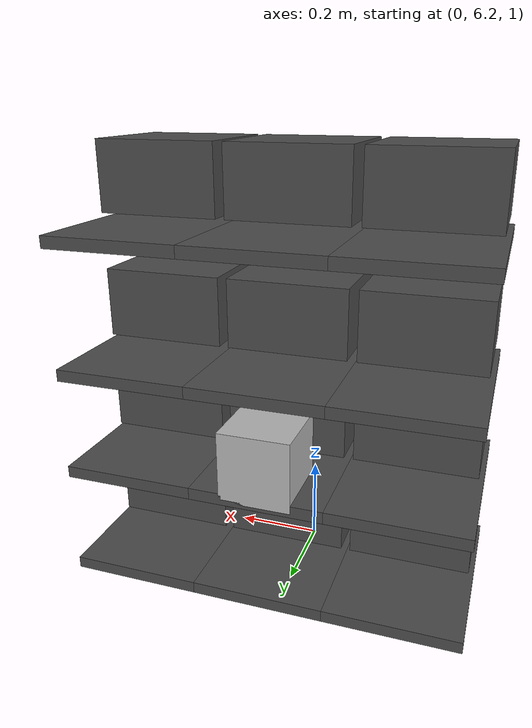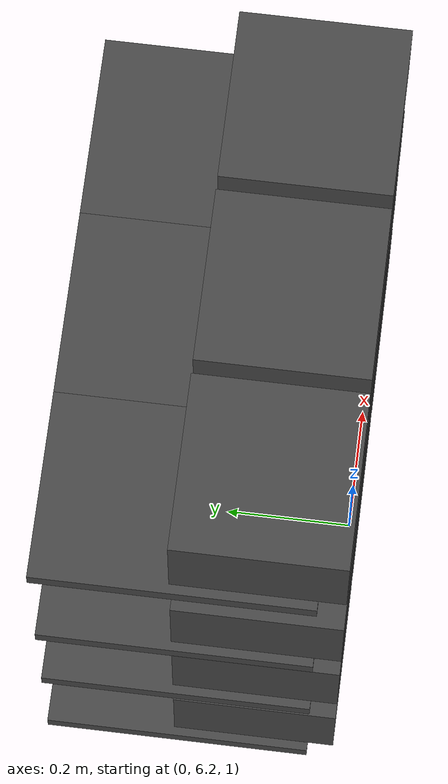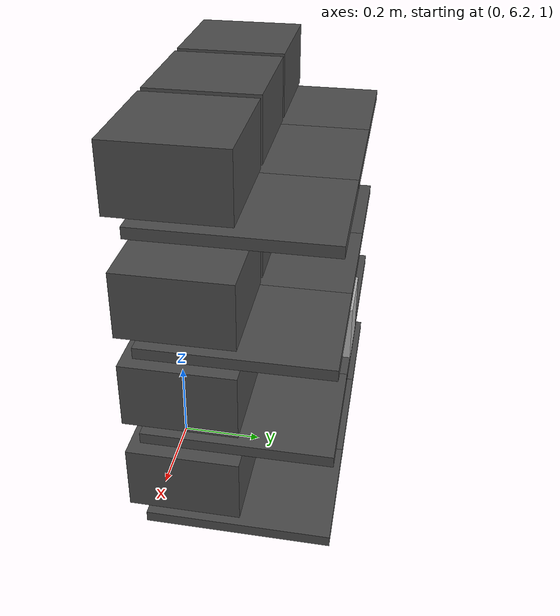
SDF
<sdf version="1.6">
 <world name="default">
  <plugin name="ros_link_attacher_plugin" filename="libgazebo_ros_link_attacher.so"/>
  <gravity>0 0 -9.8</gravity>
  <physics default="0" name="default_physics" type="ode">
   <max_step_size>0.001</max_step_size>
   <real_time_factor>1</real_time_factor>
   <real_time_update_rate>1000</real_time_update_rate>
  </physics>
  <scene><shadows>0</shadows><grid>false</grid><origin_visual>false</origin_visual></scene>
  <light name="Warehouse_CeilingLight_003" type="point">
   <pose>0 3.5 9 0 0 0</pose>
   <diffuse>0.5 0.5 0.5 1</diffuse>
   <specular>0.2 0.2 0.2 1</specular>
   <attenuation>
    <range>80</range>
    <constant>0.3</constant>
    <linear>0.01</linear>
    <quadratic>0.001</quadratic>
   </attenuation>
   <direction>0.1 0.1 -1</direction>
  </light>
  <model name="amazon_kiva_pod_pads">
   <include><name>pad_bottom_00</name><uri>model://pad_bottom</uri><pose>0.28 6.43 1.83 0 0 0</pose></include>
   <include><name>pad_bottom_01</name><uri>model://pad_bottom</uri><pose>0 6.43 1.83 0 0 0</pose></include>
   <include><name>pad_bottom_02</name><uri>model://pad_bottom</uri><pose>-0.28 6.43 1.83 0 0 0</pose></include>
   <include><name>pad_bottom_10</name><uri>model://pad_bottom</uri><pose>0.28 6.43 1.56 0 0 0</pose></include>
   <include><name>pad_bottom_11</name><uri>model://pad_bottom</uri><pose>0 6.43 1.56 0 0 0</pose></include>
   <include><name>pad_bottom_12</name><uri>model://pad_bottom</uri><pose>-0.28 6.43 1.56 0 0 0</pose></include>
   <include><name>pad_bottom_20</name><uri>model://pad_bottom</uri><pose>0.28 6.43 1.34 0 0 0</pose></include>
   <include><name>pad_bottom_21</name><uri>model://pad_bottom</uri><pose>0 6.43 1.34 0 0 0</pose></include>
   <include><name>pad_bottom_22</name><uri>model://pad_bottom</uri><pose>-0.28 6.43 1.34 0 0 0</pose></include>
   <include><name>pad_bottom_30</name><uri>model://pad_bottom</uri><pose>0.28 6.43 1.11 0 0 0</pose></include>
   <include><name>pad_bottom_31</name><uri>model://pad_bottom</uri><pose>0 6.43 1.11 0 0 0</pose></include>
   <include><name>pad_bottom_32</name><uri>model://pad_bottom</uri><pose>-0.28 6.43 1.11 0 0 0</pose></include>
   <include><name>pad_back_00</name><uri>model://pad_back</uri><pose>0.28 6.31 1.93 0 0 0</pose></include>
   <include><name>pad_back_01</name><uri>model://pad_back</uri><pose>0.0 6.31 1.93 0 0 0</pose></include>
   <include><name>pad_back_02</name><uri>model://pad_back</uri><pose>-0.28 6.31 1.93 0 0 0</pose></include>
   <include><name>pad_back_10</name><uri>model://pad_back</uri><pose>0.28 6.31 1.66 0 0 0</pose></include>
   <include><name>pad_back_11</name><uri>model://pad_back</uri><pose>0.0 6.31 1.66 0 0 0</pose></include>
   <include><name>pad_back_12</name><uri>model://pad_back</uri><pose>-0.28 6.31 1.66 0 0 0</pose></include>
   <include><name>pad_back_20</name><uri>model://pad_back</uri><pose>0.28 6.31 1.44 0 0 0</pose></include>
   <include><name>pad_back_21</name><uri>model://pad_back</uri><pose>0.0 6.31 1.44 0 0 0</pose></include>
   <include><name>pad_back_22</name><uri>model://pad_back</uri><pose>-0.28 6.31 1.44 0 0 0</pose></include>
   <include><name>pad_back_30</name><uri>model://pad_back</uri><pose>0.28 6.31 1.21 0 0 0</pose></include>
   <include><name>pad_back_31</name><uri>model://pad_back</uri><pose>0.0 6.31 1.21 0 0 0</pose></include>
   <include><name>pad_back_32</name><uri>model://pad_back</uri><pose>-0.28 6.31 1.21 0 0 0</pose></include>
  </model>
  <model name="packagen11">
   <include><uri>model://package_green</uri><static>false</static></include>
   <pose>0 6.56 1.41 0 0 0</pose>
  </model>
 </world>
</sdf>

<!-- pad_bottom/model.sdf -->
<sdf version='1.6'>
  <model name='pad_bottom'>
    <link name='link'>
      <inertial>
        <mass>1</mass>
        <inertia>
          <ixx>0.01</ixx>
          <ixy>0</ixy>
          <ixz>0</ixz>
          <iyy>0.01</iyy>
          <iyz>0</iyz>
          <izz>0.01</izz>
        </inertia>
      </inertial>
      <velocity_decay>
        <linear>0</linear>
        <angular>0</angular>
      </velocity_decay>
      <self_collide>0</self_collide>
      <kinematic>0</kinematic>
      <gravity>1</gravity>
      <enable_wind>0</enable_wind>
      <pose frame=''>0 0 0 0 -0 0</pose>
      <visual name='stairs_visual0'>
        <pose frame=''>0 0 0 0 -0 0</pose>
        <geometry>
          <box>
            <size>0.28 0.41 0.025</size>
          </box>
        </geometry>
        <material>
          <script>
            <uri>file://media/materials/scripts/gazebo.material</uri>
            <name>Gazebo/DarkGray</name>
          </script>
          <shader type='pixel'/>
        </material>
        <transparency>0</transparency>
        <cast_shadows>1</cast_shadows>
      </visual>
      <collision name='stairs_collision0'>
        <laser_retro>0</laser_retro>
        <max_contacts>10</max_contacts>
        <pose frame=''>0 0 0 0 -0 0</pose>
        <geometry>
          <box>
            <size>0.28 0.41 0.025</size>
          </box>
        </geometry>
        <surface>
          <friction>
            <ode>
              <mu>10</mu>
              <mu2>10</mu2>
              <fdir1>0 0 0</fdir1>
              <slip1>0</slip1>
              <slip2>0</slip2>
            </ode>
            <torsional>
              <coefficient>1</coefficient>
              <patch_radius>0</patch_radius>
              <surface_radius>0</surface_radius>
              <use_patch_radius>1</use_patch_radius>
              <ode>
                <slip>0</slip>
              </ode>
            </torsional>
          </friction>
          <bounce>
            <restitution_coefficient>0</restitution_coefficient>
            <threshold>1e+06</threshold>
          </bounce>
          <contact>
            <collide_without_contact>0</collide_without_contact>
            <collide_without_contact_bitmask>1</collide_without_contact_bitmask>
            <collide_bitmask>1</collide_bitmask>
            <ode>
              <soft_cfm>0</soft_cfm>
              <soft_erp>0.2</soft_erp>
              <kp>1e+07</kp>
              <kd>1</kd>
              <max_vel>0</max_vel>
              <min_depth>0</min_depth>
            </ode>
            <bullet>
              <split_impulse>1</split_impulse>
              <split_impulse_penetration_threshold>-0.01</split_impulse_penetration_threshold>
              <soft_cfm>0</soft_cfm>
              <soft_erp>0.2</soft_erp>
              <kp>1e+07</kp>
              <kd>1</kd>
            </bullet>
          </contact>
        </surface>
      </collision>
    </link>
    <static>1</static>
    <allow_auto_disable>1</allow_auto_disable>
  </model>
</sdf>

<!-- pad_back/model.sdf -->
<sdf version='1.6'>
  <model name='pad_back'>
    <link name='link'>
      <inertial>
        <mass>1</mass>
        <inertia>
          <ixx>0.01</ixx>
          <ixy>0</ixy>
          <ixz>0</ixz>
          <iyy>0.01</iyy>
          <iyz>0</iyz>
          <izz>0.01</izz>
        </inertia>
      </inertial>
      <velocity_decay>
        <linear>0</linear>
        <angular>0</angular>
      </velocity_decay>
      <self_collide>0</self_collide>
      <kinematic>0</kinematic>
      <gravity>1</gravity>
      <enable_wind>0</enable_wind>
      <pose frame=''>0 0 0 0 -0 0</pose>
      <visual name='stairs_visual0'>
        <pose frame=''>0 0 0 0 -0 0</pose>
        <geometry>
          <box>
            <size>0.26 0.25 0.15</size>
          </box>
        </geometry>
        <material>
          <script>
            <uri>file://media/materials/scripts/gazebo.material</uri>
            <name>Gazebo/DarkGray</name>
          </script>
          <shader type='pixel'/>
        </material>
        <transparency>0</transparency>
        <cast_shadows>1</cast_shadows>
      </visual>
      <collision name='stairs_collision0'>
        <laser_retro>0</laser_retro>
        <max_contacts>10</max_contacts>
        <pose frame=''>0 0 0 0 -0 0</pose>
        <geometry>
          <box>
            <size>0.26 0.25 0.15</size>
          </box>
        </geometry>
        <surface>
          <friction>
            <ode>
              <mu>10</mu>
              <mu2>10</mu2>
              <fdir1>0 0 0</fdir1>
              <slip1>0</slip1>
              <slip2>0</slip2>
            </ode>
            <torsional>
              <coefficient>1</coefficient>
              <patch_radius>0</patch_radius>
              <surface_radius>0</surface_radius>
              <use_patch_radius>1</use_patch_radius>
              <ode>
                <slip>0</slip>
              </ode>
            </torsional>
          </friction>
          <bounce>
            <restitution_coefficient>0</restitution_coefficient>
            <threshold>1e+06</threshold>
          </bounce>
          <contact>
            <collide_without_contact>0</collide_without_contact>
            <collide_without_contact_bitmask>1</collide_without_contact_bitmask>
            <collide_bitmask>1</collide_bitmask>
            <ode>
              <soft_cfm>0</soft_cfm>
              <soft_erp>0.2</soft_erp>
              <kp>1e+07</kp>
              <kd>1</kd>
              <max_vel>0</max_vel>
              <min_depth>0</min_depth>
            </ode>
            <bullet>
              <split_impulse>1</split_impulse>
              <split_impulse_penetration_threshold>-0.01</split_impulse_penetration_threshold>
              <soft_cfm>0</soft_cfm>
              <soft_erp>0.2</soft_erp>
              <kp>1e+07</kp>
              <kd>1</kd>
            </bullet>
          </contact>
        </surface>
      </collision>
    </link>
    <static>1</static>
    <allow_auto_disable>1</allow_auto_disable>
  </model>
</sdf>

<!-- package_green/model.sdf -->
<sdf version='1.6'>
  <model name='package_green'>
    <link name='link'>
      <inertial>
        <mass>1</mass>
        <inertia>
          <ixx>0.01</ixx>
          <ixy>0</ixy>
          <ixz>0</ixz>
          <iyy>0.01</iyy>
          <iyz>0</iyz>
          <izz>0.01</izz>
        </inertia>
        <pose frame=''>0 0 0 0 -0 0</pose>
      </inertial>
      <velocity_decay>
        <linear>0</linear>
        <angular>0</angular>
      </velocity_decay>
      <self_collide>0</self_collide>
      <kinematic>0</kinematic>
      <gravity>1</gravity>
      <enable_wind>0</enable_wind>
      <pose frame=''>0 0 0 0 -0 0</pose>
      <visual name='stairs_visual0'>
        <geometry>
          <mesh>
            <uri>model://package_green/meshes/visual/green_pkg.obj</uri>
          </mesh>
        </geometry>
        <material>
          <shader type='pixel'/>
        </material>
        <pose frame=''>0 0 0 0 -0 0</pose>
        <transparency>0</transparency>
        <cast_shadows>1</cast_shadows>
      </visual>
      <collision name='stairs_collision0'>
        <laser_retro>0</laser_retro>
        <max_contacts>10</max_contacts>
        <pose frame=''>0 0 0 0 -0 0</pose>
        <geometry>
          <box>
            <size>0.15 0.15 0.15</size>
          </box>
        </geometry>
        <surface>
          <friction>
            <ode>
              <mu>10</mu>
              <mu2>10</mu2>
              <fdir1>0 0 0</fdir1>
              <slip1>0</slip1>
              <slip2>0</slip2>
            </ode>
            <torsional>
              <coefficient>1</coefficient>
              <patch_radius>0</patch_radius>
              <surface_radius>0</surface_radius>
              <use_patch_radius>1</use_patch_radius>
              <ode>
                <slip>0</slip>
              </ode>
            </torsional>
          </friction>
          <bounce>
            <restitution_coefficient>0</restitution_coefficient>
            <threshold>1e+06</threshold>
          </bounce>
          <contact>
            <collide_without_contact>0</collide_without_contact>
            <collide_without_contact_bitmask>1</collide_without_contact_bitmask>
            <collide_bitmask>1</collide_bitmask>
            <ode>
              <soft_cfm>0</soft_cfm>
              <soft_erp>0.2</soft_erp>
              <kp>1e+07</kp>
              <kd>1</kd>
              <max_vel>0</max_vel>
              <min_depth>0</min_depth>
            </ode>
            <bullet>
              <split_impulse>1</split_impulse>
              <split_impulse_penetration_threshold>-0.01</split_impulse_penetration_threshold>
              <soft_cfm>0</soft_cfm>
              <soft_erp>0.2</soft_erp>
              <kp>1e+07</kp>
              <kd>1</kd>
            </bullet>
          </contact>
        </surface>
      </collision>
    </link>
    <static>0</static>
    <allow_auto_disable>1</allow_auto_disable>
  </model>
</sdf>
